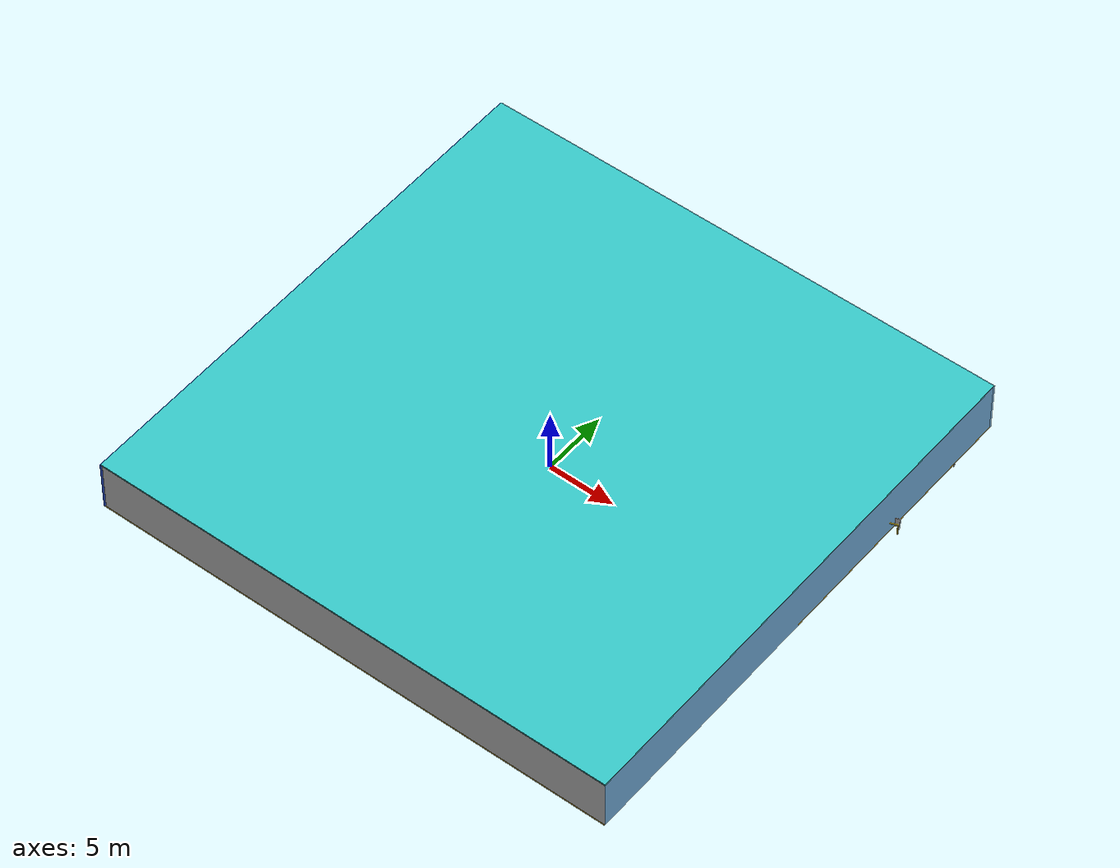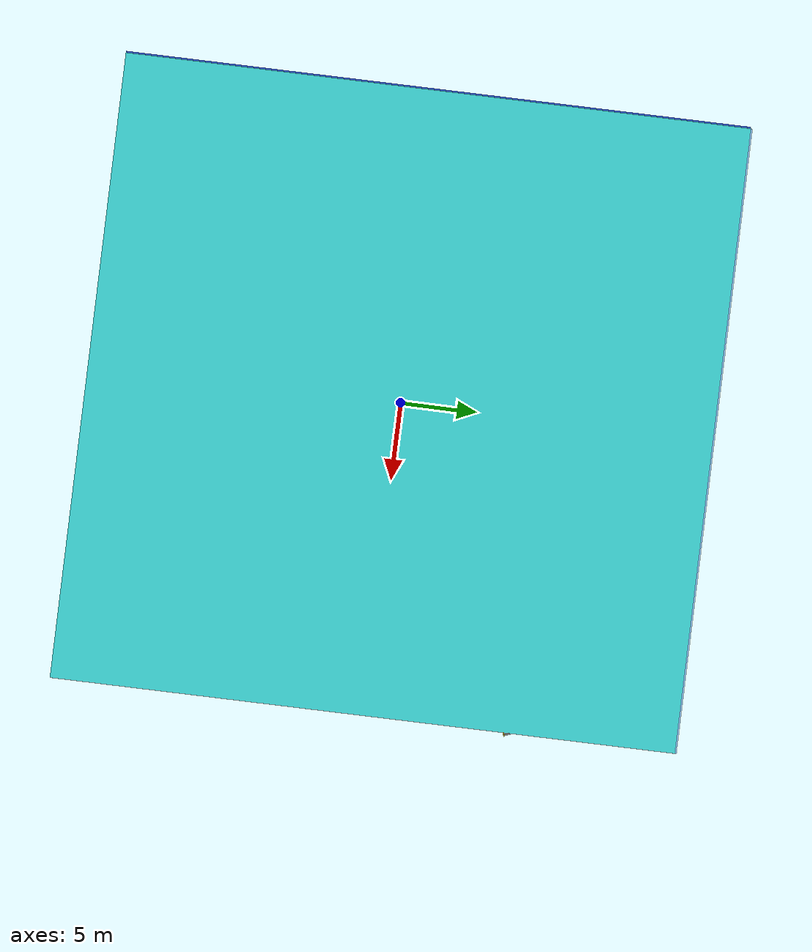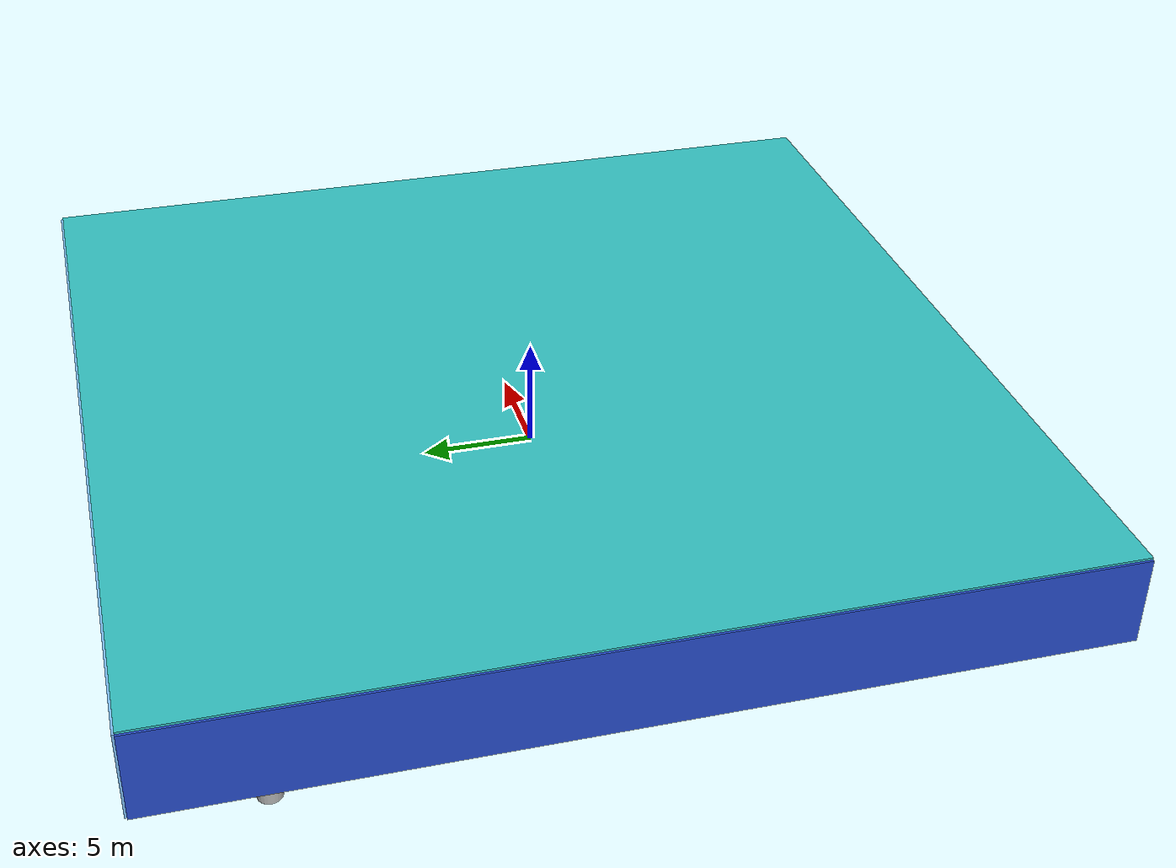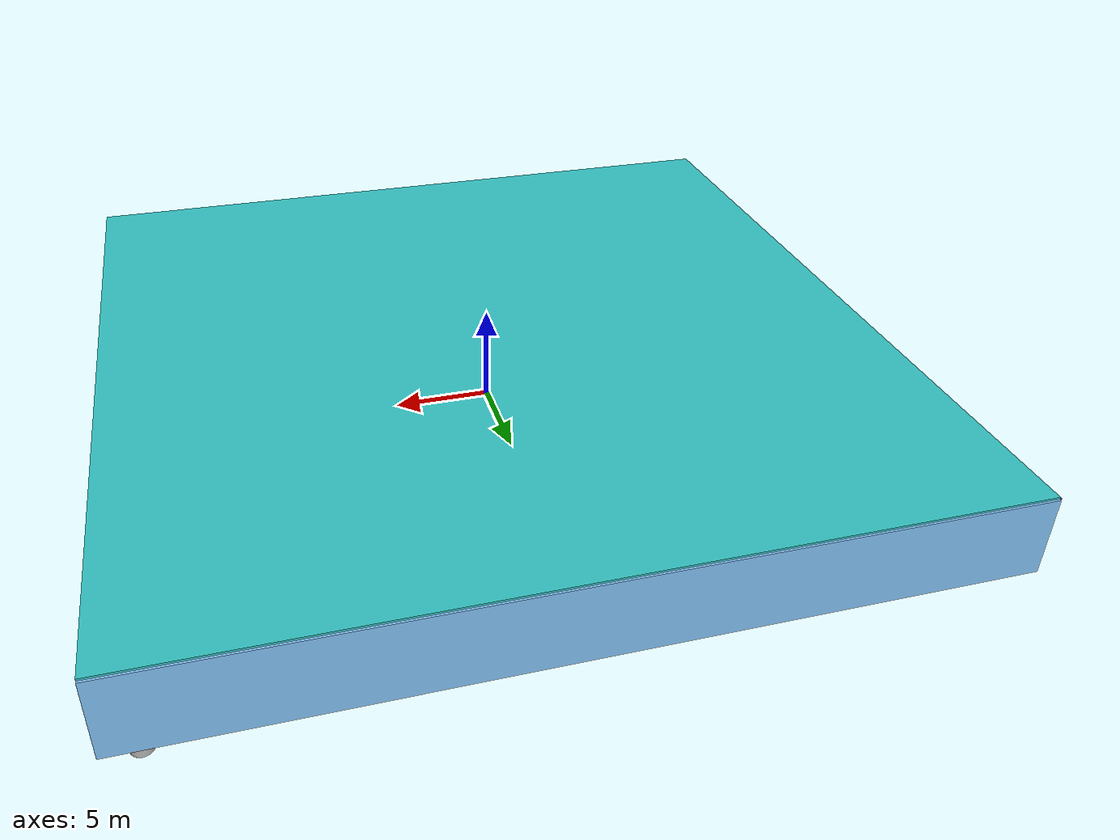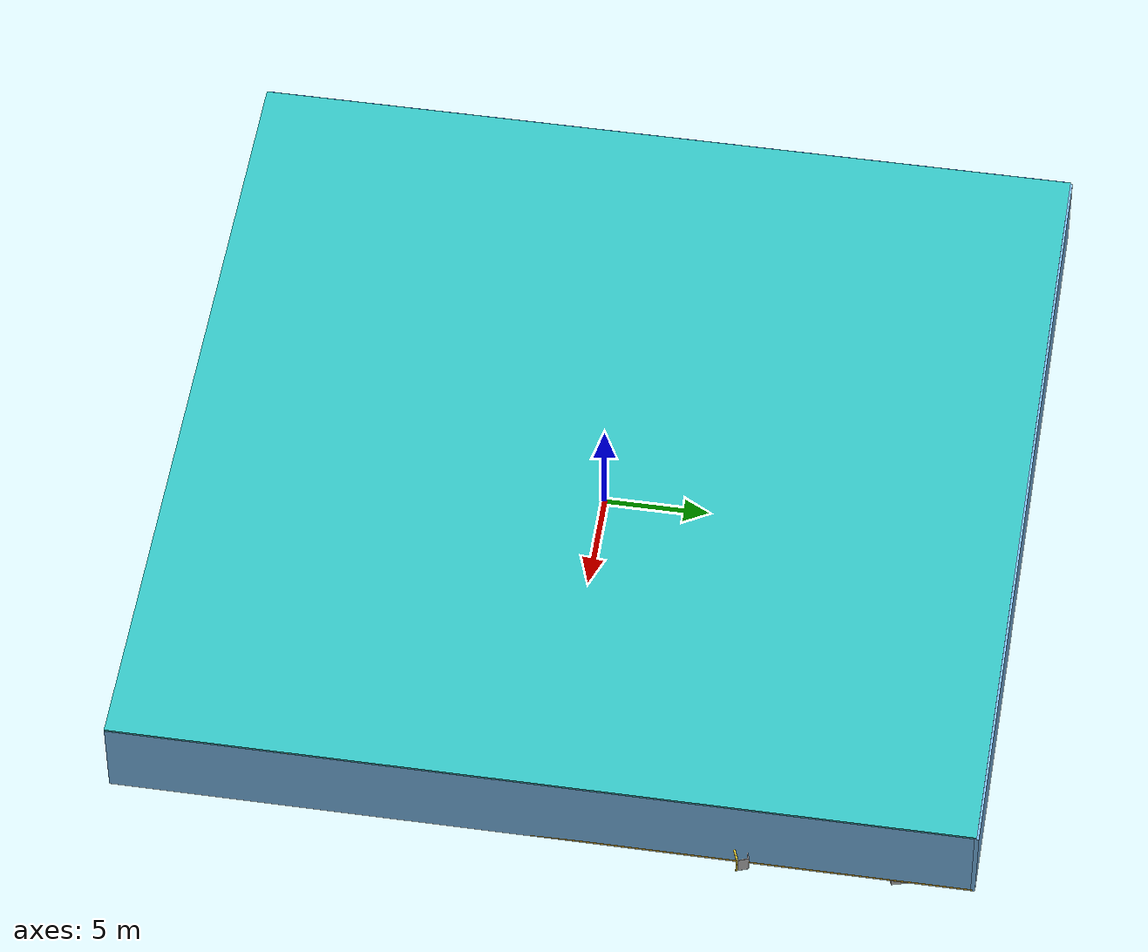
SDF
<sdf version="1.4">
 <world name="default">
  <physics type="ode">
   <max_step_size>0.001</max_step_size>
   <real_time_factor>1</real_time_factor>
   <real_time_update_rate>1000</real_time_update_rate>
   <gravity>0 0 -9.8</gravity>
  </physics>
  <scene><ambient>0.4 0.4 0.4 1</ambient><background>0.7 0.7 0.7 1</background><shadows>1</shadows></scene>
  <model name="Surrounding">
   <static>1</static>
   <link name="Ceiling">
    <collision name="Ceiling_Collision"><geometry><box><size>40 40 0.1</size></box></geometry></collision>
    <visual name="Ceiling_Visual">
     <geometry><box><size>40 40 0.1</size></box></geometry>
     <material>
      <script><uri>file://media/materials/scripts/gazebo.material</uri><name>Gazebo/TurquoiseGlow</name></script>
     </material>
    </visual>
    <pose>0 0 4.05 0 0 0</pose>
   </link>
   <link name="Wall_South">
    <collision name="Wall_South_Collision">
     <geometry><box><size>40 0 4</size></box></geometry>
     <pose>0 0 2 0 -0 0</pose>
    </collision>
    <visual name="Wall_South_Visual">
     <pose>0 0 2 0 -0 0</pose>
     <geometry><box><size>40 0 4</size></box></geometry>
     <material>
      <script><uri>file://media/materials/scripts/gazebo.material</uri><name>Gazebo/PioneerBody</name></script>
     </material>
    </visual>
    <velocity_decay><linear>0</linear><angular>0</angular></velocity_decay>
    <pose>0 -20 0 0 -0 0</pose>
   </link>
   <link name="Wall_East">
    <collision name="Wall_21_Collision">
     <geometry><box><size>40 0 4</size></box></geometry>
     <pose>0 0 2 0 -0 0</pose>
    </collision>
    <visual name="Wall_21_Visual">
     <pose>0 0 2 0 -0 0</pose>
     <geometry><box><size>40 0 4</size></box></geometry>
     <material>
      <script><uri>file://media/materials/scripts/gazebo.material</uri><name>Gazebo/SkyBlue</name></script>
     </material>
    </visual>
    <velocity_decay><linear>0</linear><angular>0</angular></velocity_decay>
    <pose>20 0 0 0 -0 1.5708</pose>
   </link>
   <link name="Wall_North">
    <collision name="Wall_22_Collision">
     <geometry><box><size>40 0.2 4</size></box></geometry>
     <pose>0 0 2 0 -0 0</pose>
    </collision>
    <visual name="Wall_22_Visual">
     <pose>0 0 2 0 -0 0</pose>
     <geometry><box><size>40 0.2 4</size></box></geometry>
     <material>
      <script><uri>file://media/materials/scripts/gazebo.material</uri><name>Gazebo/SkyBlue</name></script>
     </material>
    </visual>
    <velocity_decay><linear>0</linear><angular>0</angular></velocity_decay>
    <pose>0 20 0 0 -0 0</pose>
   </link>
   <link name="Wall_West">
    <collision name="Wall_23_Collision">
     <geometry><box><size>40 0.2 4</size></box></geometry>
     <pose>0 0 2 0 -0 0</pose>
    </collision>
    <visual name="Wall_23_Visual">
     <pose>0 0 2 0 -0 0</pose>
     <geometry><box><size>40 0.2 4</size></box></geometry>
     <material>
      <script><uri>file://media/materials/scripts/gazebo.material</uri><name>Gazebo/BlueLaser</name></script>
     </material>
    </visual>
    <velocity_decay><linear>0</linear><angular>0</angular></velocity_decay>
    <pose>-20 0 0 0 0 -1.5708</pose>
   </link>
   <link name="Ground_link">
    <collision name="collision">
     <pose>0 0 .05 0 -0 0</pose>
     <geometry><box><size>40 40 0.1</size></box></geometry>
    </collision>
    <visual name="visual">
     <pose>0 0 .05 0 -0 0</pose>
     <geometry><box><size>40 40 0.1</size></box></geometry>
     <material>
      <script><uri>file://media/materials/scripts/gazebo.material</uri><name>Gazebo/Gold</name></script>
     </material>
    </visual>
   </link>
   <static>1</static>
  </model>
  <spherical_coordinates>
   <surface_model>EARTH_WGS84</surface_model>
   <latitude_deg>0</latitude_deg>
   <longitude_deg>0</longitude_deg>
   <elevation>0</elevation>
   <heading_deg>0</heading_deg>
  </spherical_coordinates>
  <light name="lightball_0" type="diffuse">
   <diffuse>0.8 0.8 0.8 1</diffuse>
   <specular>0.2 0.2 0.2 1</specular>
   <attenuation>
    <range>100</range>
    <constant>0.7</constant>
    <linear>0.01</linear>
    <quadratic>0.001</quadratic>
   </attenuation>
   <direction>-0.5 0.1 -0.9</direction>
   <pose>-13.4883975117 -7.52734509052 3.0276366255 0 0 0</pose>
  </light>
  <light name="lightball_1" type="diffuse">
   <diffuse>0.8 0.8 0.8 1</diffuse>
   <specular>0.2 0.2 0.2 1</specular>
   <attenuation>
    <range>100</range>
    <constant>0.7</constant>
    <linear>0.01</linear>
    <quadratic>0.001</quadratic>
   </attenuation>
   <direction>-0.5 0.1 -0.9</direction>
   <pose>12.3501724489 -5.03106640348 2.16704477577 0 0 0</pose>
  </light>
  <light name="lightball_2" type="diffuse">
   <diffuse>0.8 0.8 0.8 1</diffuse>
   <specular>0.2 0.2 0.2 1</specular>
   <attenuation>
    <range>100</range>
    <constant>0.7</constant>
    <linear>0.01</linear>
    <quadratic>0.001</quadratic>
   </attenuation>
   <direction>-0.5 0.1 -0.9</direction>
   <pose>-6.01641351856 5.40097294704 1.83031938017 0 0 0</pose>
  </light>
  <light name="lightball_3" type="diffuse">
   <diffuse>0.8 0.8 0.8 1</diffuse>
   <specular>0.2 0.2 0.2 1</specular>
   <attenuation>
    <range>100</range>
    <constant>0.7</constant>
    <linear>0.01</linear>
    <quadratic>0.001</quadratic>
   </attenuation>
   <direction>-0.5 0.1 -0.9</direction>
   <pose>16.0477455135 15.7404305562 1.52504422058 0 0 0</pose>
  </light>
  <light name="lightball_4" type="diffuse">
   <diffuse>0.8 0.8 0.8 1</diffuse>
   <specular>0.2 0.2 0.2 1</specular>
   <attenuation>
    <range>100</range>
    <constant>0.7</constant>
    <linear>0.01</linear>
    <quadratic>0.001</quadratic>
   </attenuation>
   <direction>-0.5 0.1 -0.9</direction>
   <pose>-19.2335134304 6.78897652895 2.77981174437 0 0 0</pose>
  </light>
  <light name="lightball_5" type="diffuse">
   <diffuse>0.8 0.8 0.8 1</diffuse>
   <specular>0.2 0.2 0.2 1</specular>
   <attenuation>
    <range>100</range>
    <constant>0.7</constant>
    <linear>0.01</linear>
    <quadratic>0.001</quadratic>
   </attenuation>
   <direction>-0.5 0.1 -0.9</direction>
   <pose>12.8296935036 7.18925148335 0.709416502461 0 0 0</pose>
  </light>
  <include>
   <uri>model://robocup_3Dsim_goal</uri>
   <pose>-17.3997103145 3.2665218587 0 0 0 2.68907609288</pose>
  </include>
  <include><uri>model://cabinet</uri><pose>-17.014239245 12.9483059859 0 0 0 0.897337598364</pose></include>
  <include>
   <uri>model://textured_shapes</uri>
   <pose>-18.2858958424 15.5976878649 0 0 0 2.08935062117</pose>
  </include>
  <include>
   <uri>model://construction_cone</uri>
   <pose>-14.743195714 0.65672034356 0 0 0 0.436847430626</pose>
  </include>
  <include><uri>model://table</uri><pose>-14.4650078767 5.33204125934 0 0 0 0.705029375832</pose></include>
  <include><uri>model://table</uri><pose>-13.6706469884 13.6175894407 0 0 0 2.62039794795</pose></include>
  <include><uri>model://cabinet</uri><pose>-13.5225979942 14.3801203019 0 0 0 1.25421210931</pose></include>
  <include>
   <uri>model://robocup_3Dsim_goal</uri>
   <pose>-12.337102635 -18.2590437935 0 0 0 2.71866105317</pose>
  </include>
  <include><uri>model://cabinet</uri><pose>-12.1629844416 5.72177823399 0 0 0 2.1274721169</pose></include>
  <include>
   <uri>model://robocup_3Dsim_goal</uri>
   <pose>-12.2009388269 11.7077581959 0 0 0 1.02833076496</pose>
  </include>
  <include><uri>model://cabinet</uri><pose>-8.81193028423 -17.1855346442 0 0 0 0.573688214237</pose></include>
  <include>
   <uri>model://robocup_3Dsim_goal</uri>
   <pose>-7.68938376145 18.4130161231 0 0 0 1.50301145373</pose>
  </include>
  <include>
   <uri>model://textured_shapes</uri>
   <pose>-5.42631918554 -6.33036276963 0 0 0 0.982716173391</pose>
  </include>
  <include><uri>model://cabinet</uri><pose>-6.04343240562 0.46041868181 0 0 0 0.48214049782</pose></include>
  <include>
   <uri>model://construction_cone</uri>
   <pose>-5.38828764224 10.2539850027 0 0 0 2.53705277841</pose>
  </include>
  <include><uri>model://table</uri><pose>-1.77193096861 -13.4138882087 0 0 0 2.43236778069</pose></include>
  <include>
   <uri>model://textured_shapes</uri>
   <pose>-1.52799632994 -11.7694879837 0 0 0 2.63595387616</pose>
  </include>
  <include><uri>model://cabinet</uri><pose>-1.66655718584 5.97995562061 0 0 0 2.71601701852</pose></include>
  <include><uri>model://cabinet</uri><pose>0.816051392744 -1.77144663202 0 0 0 1.73266773224</pose></include>
  <include><uri>model://table</uri><pose>0.129619405161 5.88364874913 0 0 0 1.30051835182</pose></include>
  <include>
   <uri>model://textured_shapes</uri>
   <pose>0.516580847284 15.6175258063 0 0 0 0.42926791365</pose>
  </include>
  <include>
   <uri>model://robocup_3Dsim_goal</uri>
   <pose>3.95926711842 -13.7978913395 0 0 0 1.3988078927</pose>
  </include>
  <include>
   <uri>model://robocup_3Dsim_goal</uri>
   <pose>9.19769962015 -3.65792707703 0 0 0 2.4282240816</pose>
  </include>
  <include><uri>model://table</uri><pose>11.4426846938 -18.4037185213 0 0 0 1.35212661477</pose></include>
  <include>
   <uri>model://construction_cone</uri>
   <pose>15.7854180125 -15.2639635566 0 0 0 1.74414370197</pose>
  </include>
  <include><uri>model://cabinet</uri><pose>15.5256952637 16.483757527 0 0 0 1.3282053513</pose></include>
  <include>
   <uri>model://construction_cone</uri>
   <pose>18.6041627746 -11.4834776964 0 0 0 0.167760058421</pose>
  </include>
  <include><uri>model://table</uri><pose>18.6860654521 -8.38129233303 0 0 0 0.76607111206</pose></include>
  <include>
   <uri>model://textured_shapes</uri>
   <pose>18.3733981586 3.24940125249 0 0 0 0.101920013635</pose>
  </include>
  <include>
   <uri>model://robocup_3Dsim_goal</uri>
   <pose>19.5109766815 8.88654328006 0 0 0 1.91445116684</pose>
  </include>
  <include>
   <uri>model://textured_shapes</uri>
   <pose>18.8389004662 18.0508953519 0 0 0 0.276802652573</pose>
  </include>
 </world>
</sdf>

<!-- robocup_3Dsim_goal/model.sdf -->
<sdf version="1.5">
  <model name="robocup_3d_goal">
    <static>true</static>
    <link name="left_post">
      <pose>0 1.05 0.45 0 0 0</pose>
      <collision name="collision">
        <geometry>
          <cylinder>
            <radius>0.05</radius>
            <length>0.9</length>
          </cylinder>
        </geometry>
      </collision>
      <visual name="visual">
        <geometry>
          <cylinder>
            <radius>0.05</radius>
            <length>0.9</length>
          </cylinder>
        </geometry>
        <material>
          <script>
            <uri>file://media/materials/scripts/gazebo.material</uri>
            <name>Gazebo/ZincYellow</name>
          </script>
        </material>
      </visual>
    </link>
    <link name="left_support_horiz_lower">
      <pose>0.30 1.05 0.01 0 0 0</pose>
      <collision name="collision">
        <geometry>
          <box>
            <size>0.50 0.02 0.02</size>
          </box>
        </geometry>
      </collision>
      <visual name="visual">
        <geometry>
          <box>
            <size>0.50 0.02 0.02</size>
          </box>
        </geometry>
        <material>
          <script>
            <uri>file://media/materials/scripts/gazebo.material</uri>
            <name>Gazebo/White</name>
          </script>
        </material>
      </visual>
    </link>
    <link name="left_support_horiz_upper">
      <pose>0.30 1.05 0.79 0 0 0</pose>
      <collision name="collision">
        <geometry>
          <box>
            <size>0.50 0.02 0.02</size>
          </box>
        </geometry>
      </collision>
      <visual name="visual">
        <geometry>
          <box>
            <size>0.50 0.02 0.02</size>
          </box>
        </geometry>
        <material>
          <script>
            <uri>file://media/materials/scripts/gazebo.material</uri>
            <name>Gazebo/White</name>
          </script>
        </material>
      </visual>
    </link>
    <link name="left_support_vertical">
      <pose>0.56 1.05 0.4 0 1.5708 0</pose>
      <collision name="collision">
        <geometry>
          <box>
            <size>0.80 0.02 0.02</size>
          </box>
        </geometry>
      </collision>
      <visual name="visual">
        <geometry>
          <box>
            <size>0.80 0.02 0.02</size>
          </box>
        </geometry>
        <material>
          <script>
            <uri>file://media/materials/scripts/gazebo.material</uri>
            <name>Gazebo/White</name>
          </script>
        </material>
      </visual>
    </link>
    <link name="right_support_horiz_lower">
      <pose>0.30 -1.05 0.01 0 0 0</pose>
      <collision name="collision">
        <geometry>
          <box>
            <size>0.50 0.02 0.02</size>
          </box>
        </geometry>
      </collision>
      <visual name="visual">
        <geometry>
          <box>
            <size>0.50 0.02 0.02</size>
          </box>
        </geometry>
        <material>
          <script>
            <uri>file://media/materials/scripts/gazebo.material</uri>
            <name>Gazebo/White</name>
          </script>
        </material>
      </visual>
    </link>
    <link name="right_support_horiz_upper">
      <pose>0.30 -1.05 0.79 0 0 0</pose>
      <collision name="collision">
        <geometry>
          <box>
            <size>0.50 0.02 0.02</size>
          </box>
        </geometry>
      </collision>
      <visual name="visual">
        <geometry>
          <box>
            <size>0.50 0.02 0.02</size>
          </box>
        </geometry>
        <material>
          <script>
            <uri>file://media/materials/scripts/gazebo.material</uri>
            <name>Gazebo/White</name>
          </script>
        </material>
      </visual>
    </link>
    <link name="right_support_vertical">
      <pose>0.56 -1.05 0.4 0 1.5708 0</pose>
      <collision name="collision">
        <geometry>
          <box>
            <size>0.80 0.02 0.02</size>
          </box>
        </geometry>
      </collision>
      <visual name="visual">
        <geometry>
          <box>
            <size>0.80 0.02 0.02</size>
          </box>
        </geometry>
        <material>
          <script>
            <uri>file://media/materials/scripts/gazebo.material</uri>
            <name>Gazebo/White</name>
          </script>
        </material>
      </visual>
    </link>
    <link name="center_support_horiz_lower">
      <pose>0.56 0 0.01 0 1.5708 0</pose>
      <collision name="collision">
        <geometry>
          <box>
            <size>0.02 2.08 0.02</size>
          </box>
        </geometry>
      </collision>
      <visual name="visual">
        <geometry>
          <box>
            <size>0.02 2.08 0.02</size>
          </box>
        </geometry>
        <material>
          <script>
            <uri>file://media/materials/scripts/gazebo.material</uri>
            <name>Gazebo/White</name>
          </script>
        </material>
      </visual>
    </link>
    <link name="center_support_horiz_upper">
      <pose>0.56 0 0.79 0 1.5708 0</pose>
      <collision name="collision">
        <geometry>
          <box>
            <size>0.02 2.08 0.02</size>
          </box>
        </geometry>
      </collision>
      <visual name="visual">
        <geometry>
          <box>
            <size>0.02 2.08 0.02</size>
          </box>
        </geometry>
        <material>
          <script>
            <uri>file://media/materials/scripts/gazebo.material</uri>
            <name>Gazebo/White</name>
          </script>
        </material>
      </visual>
    </link>
    <link name="right_post">
      <pose>0 -1.05 0.45 0 0 0</pose>
      <collision name="collision">
        <geometry>
          <cylinder>
            <radius>0.05</radius>
            <length>0.9</length>
          </cylinder>
        </geometry>
      </collision>
      <visual name="visual">
        <geometry>
          <cylinder>
            <radius>0.05</radius>
            <length>0.9</length>
          </cylinder>
        </geometry>
        <material>
          <script>
            <uri>file://media/materials/scripts/gazebo.material</uri>
            <name>Gazebo/ZincYellow</name>
          </script>
        </material>
      </visual>
    </link>
    <link name="crossbar">
      <pose>0 0 0.85 1.57 1.57 0</pose>
      <collision name="collision">
        <geometry>
          <cylinder>
            <radius>0.05</radius>
            <length>2.0</length>
          </cylinder>
        </geometry>
      </collision>
      <visual name="visual">
        <geometry>
          <cylinder>
            <radius>0.05</radius>
            <length>2.0</length>
          </cylinder>
        </geometry>
        <material>
          <script>
            <uri>file://media/materials/scripts/gazebo.material</uri>
            <name>Gazebo/ZincYellow</name>
          </script>
        </material>
      </visual>
    </link>
    <link name="center_net">
      <pose>0.56 0 0.40 0 0 0</pose>
      <collision name="collision">
        <geometry>
          <box>
            <size>0.01 2.1 0.80</size>
          </box>
        </geometry>
      </collision>
      <visual name="visual">
        <geometry>
          <box>
            <size>0.01 2.1 0.80</size>
          </box>
        </geometry>
        <material>
          <script>
            <uri>model://../model_source/models/robocup09_spl_field/materials/scripts/</uri>
            <uri>model://../model_source/models/robocup09_spl_field/materials/textures/</uri>
            <name>RoboCup/Net</name>
          </script>
        </material>
      </visual>
    </link>
    <link name="left_net">
      <pose>0.30 1.05 0.40 0 0 0</pose>
      <collision name="collision">
        <geometry>
          <box>
            <size>0.50 0.01 0.76</size>
          </box>
        </geometry>
      </collision>
      <visual name="visual">
        <geometry>
          <box>
            <size>0.50 0.01 0.76</size>
          </box>
        </geometry>
        <material>
          <script>
            <uri>model://../model_source/models/robocup09_spl_field/materials/scripts/</uri>
            <uri>model://../model_source/models/robocup09_spl_field/materials/textures/</uri>
            <name>RoboCup/Net</name>
          </script>
        </material>
      </visual>
    </link>
    <link name="right_net">
      <pose>0.30 -1.05 0.40 0 0 0</pose>
      <collision name="collision">
        <geometry>
          <box>
            <size>0.50 0.01 0.76</size>
          </box>
        </geometry>
      </collision>
      <visual name="visual">
        <geometry>
          <box>
            <size>0.50 0.01 0.76</size>
          </box>
        </geometry>
        <material>
          <script>
            <uri>model://../model_source/models/robocup09_spl_field/materials/scripts/</uri>
            <uri>model://../model_source/models/robocup09_spl_field/materials/textures/</uri>
            <name>RoboCup/Net</name>
          </script>
        </material>
      </visual>
    </link>
  </model>
</sdf>

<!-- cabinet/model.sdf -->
<sdf version="1.5">
  <model name="cabinet">
    <static>true</static>
    <link name="cabinet_bottom_plate">
      <inertial>
        <pose>0 0 -1 0 0 0</pose>
        <inertia>
          <ixx>2.050000</ixx>
          <ixy>0</ixy>
          <ixz>0</ixz>
          <iyy>2.050000</iyy>
          <iyz>0</iyz>
          <izz>2.050000</izz>
        </inertia>
        <mass>25.000000</mass>
      </inertial>
      <collision name="cabinet_bottom_plate_geom">
        <pose>0 0 0.010000 0 0 0</pose>
        <geometry>
          <box>
            <size>0.450000 0.450000 0.020000</size>
          </box>
        </geometry>
      </collision>
      <visual name="cabinet_bottom_plate_geom_visual">
        <pose>0 0 0.010000 0 0 0</pose>
        <geometry>
          <box>
            <size>0.450000 0.450000 0.020000</size>
          </box>
        </geometry>
        <material>
          <script>
            <uri>model://media/materials/scripts/gazebo.material</uri>
            <name>Gazebo/Wood</name>
          </script>
        </material>
      </visual>
      <collision name="cabinet_bottom_plate_geom_cabinet_back_plate">
        <pose>0.235000 0 0.510000 0 0 0</pose>
        <geometry>
          <box>
            <size>0.020000 0.450000 1.020000</size>
          </box>
        </geometry>
      </collision>
      <visual name="cabinet_bottom_plate_geom_cabinet_back_plate_visual">
        <pose>0.235000 0 0.510000 0 0 0</pose>
        <geometry>
          <box>
            <size>0.020000 0.450000 1.020000</size>
          </box>
        </geometry>
        <material>
          <script>
            <uri>model://media/materials/scripts/gazebo.material</uri>
            <name>Gazebo/Wood</name>
          </script>
        </material>
      </visual>
      <collision name="cabinet_bottom_plate_geom_cabinet_left_plate">
        <pose>0 0.235000 0.510000 0 0 0</pose>
        <geometry>
          <box>
            <size>0.450000 0.020000 1.020000</size>
          </box>
        </geometry>
      </collision>
      <visual name="cabinet_bottom_plate_geom_cabinet_left_plate_visual">
        <pose>0 0.235000 0.510000 0 0 0</pose>
        <geometry>
          <box>
            <size>0.450000 0.020000 1.020000</size>
          </box>
        </geometry>
        <material>
          <script>
            <uri>model://media/materials/scripts/gazebo.material</uri>
            <name>Gazebo/Wood</name>
          </script>
        </material>
      </visual>
      <collision name="cabinet_bottom_plate_geom_cabinet_middle_plate">
        <pose>0 0 0.510000 0 0 0</pose>
        <geometry>
          <box>
            <size>0.450000 0.450000 0.020000</size>
          </box>
        </geometry>
      </collision>
      <visual name="cabinet_bottom_plate_geom_cabinet_middle_plate_visual">
        <pose>0 0 0.510000 0 0 0</pose>
        <geometry>
          <box>
            <size>0.450000 0.450000 0.020000</size>
          </box>
        </geometry>
        <material>
          <script>
            <uri>model://media/materials/scripts/gazebo.material</uri>
            <name>Gazebo/Wood</name>
          </script>
        </material>
      </visual>
      <collision name="cabinet_bottom_plate_geom_cabinet_right_plate">
        <pose>0 -0.235000 0.510000 0 0 0</pose>
        <geometry>
          <box>
            <size>0.450000 0.020000 1.020000</size>
          </box>
        </geometry>
      </collision>
      <visual name="cabinet_bottom_plate_geom_cabinet_right_plate_visual">
        <pose>0 -0.235000 0.510000 0 0 0</pose>
        <geometry>
          <box>
            <size>0.450000 0.020000 1.020000</size>
          </box>
        </geometry>
        <material>
          <script>
            <uri>model://media/materials/scripts/gazebo.material</uri>
            <name>Gazebo/Wood</name>
          </script>
        </material>
      </visual>
      <collision name="cabinet_bottom_plate_geom_cabinet_top_plate">
        <pose>0 0 1.010000 0 0 0</pose>
        <geometry>
          <box>
            <size>0.450000 0.450000 0.020000</size>
          </box>
        </geometry>
      </collision>
      <visual name="cabinet_bottom_plate_geom_cabinet_top_plate_visual">
        <pose>0 0 1.010000 0 0 0</pose>
        <geometry>
          <box>
            <size>0.450000 0.450000 0.020000</size>
          </box>
        </geometry>
        <material>
          <script>
            <uri>model://media/materials/scripts/gazebo.material</uri>
            <name>Gazebo/Wood</name>
          </script>
        </material>
      </visual>
    </link>
  </model>
</sdf>

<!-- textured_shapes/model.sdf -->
<sdf version="1.6">
  <model name="textured_shapes">
    <pose>0 0 0.5 0 0 0</pose>
    <link name="box">
      <pose>0 -1.5 0 0 0 0</pose>
      <collision name="collision">
        <geometry>
          <box>
            <size>1 1 1</size>
          </box>
        </geometry>
      </collision>
      <visual name="visual">
        <geometry>
          <box>
            <size>1 1 1</size>
          </box>
        </geometry>
        <material>
          <script>
            <uri>model://../model_source/models/textured_shapes/materials/scripts</uri>
            <uri>model://../model_source/models/textured_shapes/materials/textures</uri>
            <name>TexturedShape/Squares</name>
          </script>
        </material>
      </visual>
    </link>
    <link name="sphere">
      <collision name="collision">
        <geometry>
          <sphere>
            <radius>0.5</radius>
          </sphere>
        </geometry>
      </collision>
      <visual name="visual">
        <geometry>
          <sphere>
            <radius>0.5</radius>
          </sphere>
        </geometry>
        <material>
          <script>
            <uri>model://../model_source/models/textured_shapes/materials/scripts</uri>
            <uri>model://../model_source/models/textured_shapes/materials/textures</uri>
            <name>TexturedShape/Squares</name>
          </script>
        </material>
      </visual>
    </link>
    <link name="cylinder">
      <pose>0 1.5 0 0 0 0</pose>
      <collision name="collision">
        <geometry>
          <cylinder>
            <radius>0.5</radius>
            <length>1</length>
          </cylinder>
        </geometry>
      </collision>
      <visual name="visual">
        <geometry>
          <cylinder>
            <radius>0.5</radius>
            <length>1</length>
          </cylinder>
        </geometry>
        <material>
          <script>
            <uri>model://../model_source/models/textured_shapes/materials/scripts</uri>
            <uri>model://../model_source/models/textured_shapes/materials/textures</uri>
            <name>TexturedShape/Squares</name>
          </script>
        </material>
      </visual>
    </link>
  </model>
</sdf>

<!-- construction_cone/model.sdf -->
<sdf version="1.5">
  <model name="Construction Cone">
    <link name="link">
      <collision name="collision">
        <geometry>
          <mesh>
            <scale>10 10 10</scale>
            <uri>file://isr-testbed/construction_cone/meshes/construction_cone.dae</uri>
          </mesh>
        </geometry>
      </collision>
      <visual name="visual">
        <geometry>
          <mesh>
            <scale>10 10 10</scale>
            <uri>file://isr-testbed/construction_cone/meshes/construction_cone.dae</uri>
          </mesh>
        </geometry>
      </visual>
    </link>
  </model>
</sdf>

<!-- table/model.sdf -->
<sdf version="1.5">
  <model name="table">
    <static>true</static>
    <link name="link">
      <collision name="surface">
        <pose>0 0 1.0 0 0 0</pose>
        <geometry>
          <box>
            <size>1.5 0.8 0.03</size>
          </box>
        </geometry>
        <surface>
          <friction>
            <ode>
              <mu>0.6</mu>
              <mu2>0.6</mu2>
            </ode>
          </friction>
        </surface>
      </collision>
      <visual name="visual1">
        <pose>0 0 1.0 0 0 0</pose>
        <geometry>
          <box>
            <size>1.5 0.8 0.03</size>
          </box>
        </geometry>
        <material>
          <script>
            <uri>model://media/materials/scripts/gazebo.material</uri>
            <name>Gazebo/Wood</name>
          </script>
        </material>
      </visual>
      <collision name="front_left_leg">
        <pose>0.68 0.38 0.5 0 0 0</pose>
        <geometry>
          <cylinder>
            <radius>0.02</radius>
            <length>1.0</length>
          </cylinder>
        </geometry>
      </collision>
      <visual name="front_left_leg">
        <pose>0.68 0.38 0.5 0 0 0</pose>
        <geometry>
          <cylinder>
            <radius>0.02</radius>
            <length>1.0</length>
          </cylinder>
        </geometry>
        <material>
          <script>
            <uri>model://media/materials/scripts/gazebo.material</uri>
            <name>Gazebo/Grey</name>
          </script>
        </material>
      </visual>
      <collision name="front_right_leg">
        <pose>0.68 -0.38 0.5 0 0 0</pose>
        <geometry>
          <cylinder>
            <radius>0.02</radius>
            <length>1.0</length>
          </cylinder>
        </geometry>
      </collision>
      <visual name="front_right_leg">
        <pose>0.68 -0.38 0.5 0 0 0</pose>
        <geometry>
          <cylinder>
            <radius>0.02</radius>
            <length>1.0</length>
          </cylinder>
        </geometry>
        <material>
          <script>
            <uri>model://media/materials/scripts/gazebo.material</uri>
            <name>Gazebo/Grey</name>
          </script>
        </material>
      </visual>
      <collision name="back_right_leg">
        <pose>-0.68 -0.38 0.5 0 0 0</pose>
        <geometry>
          <cylinder>
            <radius>0.02</radius>
            <length>1.0</length>
          </cylinder>
        </geometry>
      </collision>
      <visual name="back_right_leg">
        <pose>-0.68 -0.38 0.5 0 0 0</pose>
        <geometry>
          <cylinder>
            <radius>0.02</radius>
            <length>1.0</length>
          </cylinder>
        </geometry>
        <material>
          <script>
            <uri>model://media/materials/scripts/gazebo.material</uri>
            <name>Gazebo/Grey</name>
          </script>
        </material>
      </visual>
      <collision name="back_left_leg">
        <pose>-0.68 0.38 0.5 0 0 0</pose>
        <geometry>
          <cylinder>
            <radius>0.02</radius>
            <length>1.0</length>
          </cylinder>
        </geometry>
      </collision>
      <visual name="back_left_leg">
        <pose>-0.68 0.38 0.5 0 0 0</pose>
        <geometry>
          <cylinder>
            <radius>0.02</radius>
            <length>1.0</length>
          </cylinder>
        </geometry>
        <material>
          <script>
            <uri>model://media/materials/scripts/gazebo.material</uri>
            <name>Gazebo/Grey</name>
          </script>
        </material>
      </visual>
    </link>
  </model>
</sdf>
